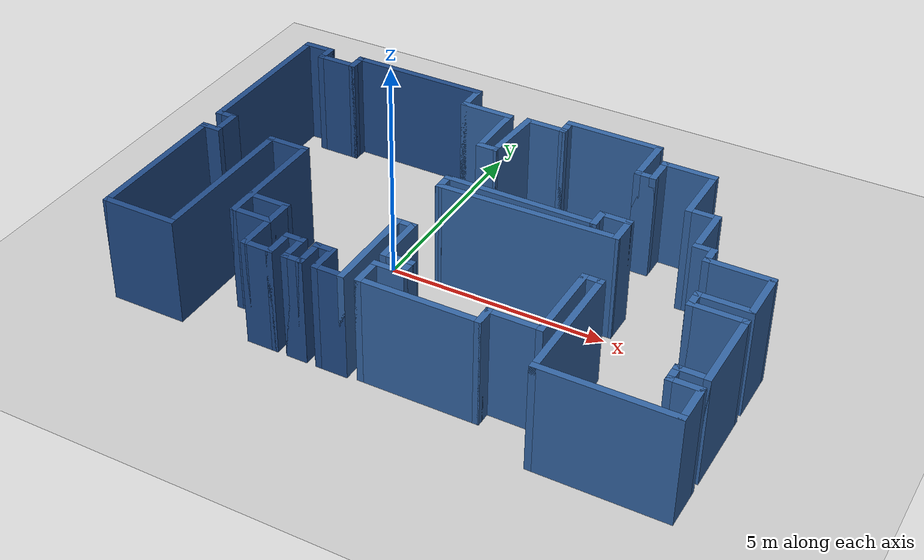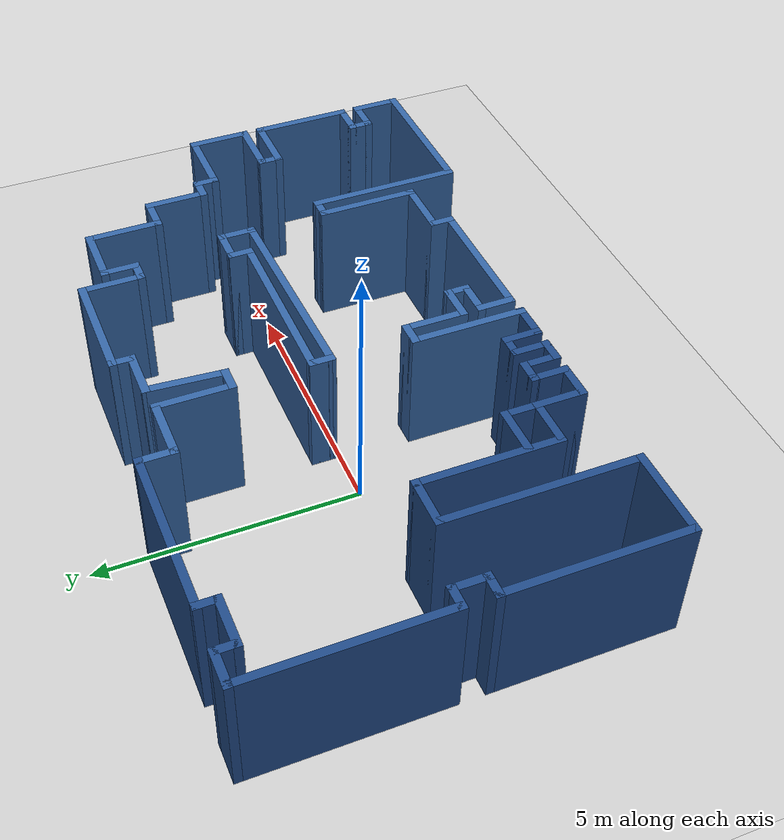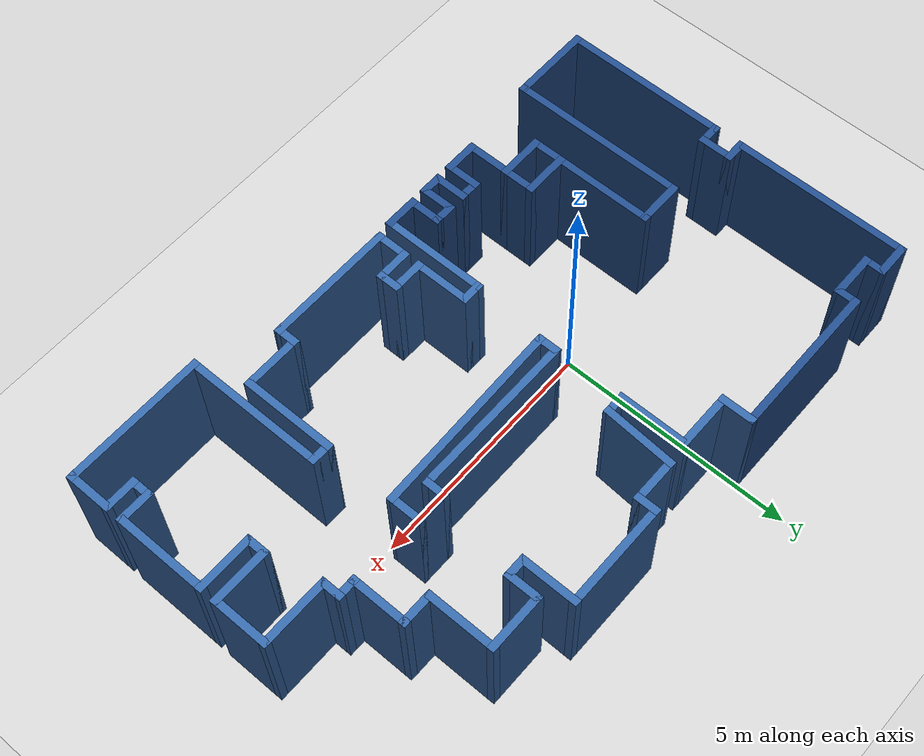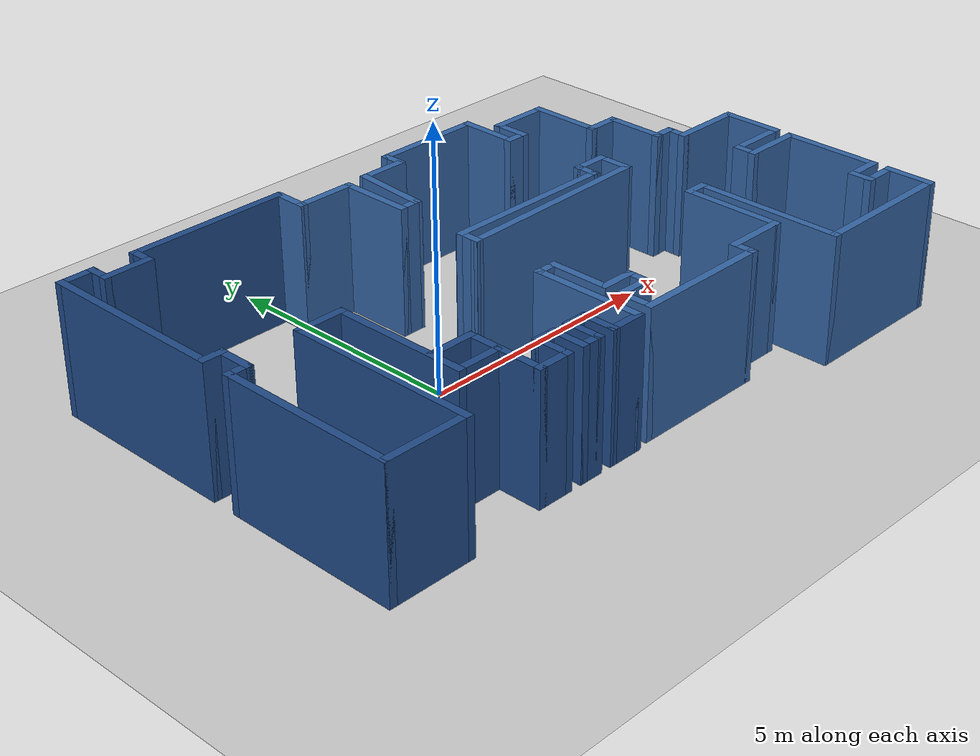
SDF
<sdf version="1.6">
 <world name="default">
  <model name="ground_plane">
   <static>1</static>
   <link name="link">
    <collision name="collision">
     <geometry><plane><normal>0 0 1</normal><size>100 100</size></plane></geometry>
     <surface>
      <contact><collide_bitmask>65535</collide_bitmask></contact>
      <friction><ode><mu>100</mu><mu2>50</mu2></ode></friction>
     </surface>
    </collision>
    <visual name="visual">
     <cast_shadows>0</cast_shadows>
     <geometry><plane><normal>0 0 1</normal><size>100 100</size></plane></geometry>
     <material>
      <script><uri>file://media/materials/scripts/gazebo.material</uri><name>Gazebo/Grey</name></script>
     </material>
    </visual>
   </link>
  </model>
  <model name="map_90">
   <pose>1.80242 -0.109149 0 0 -0 0</pose>
   <link name="Wall_1">
    <collision name="Wall_1_Collision">
     <geometry><box><size>0.5 0.15 2.5</size></box></geometry>
     <pose>0 0 1.25 0 -0 0</pose>
    </collision>
    <visual name="Wall_1_Visual">
     <pose>0 0 1.25 0 -0 0</pose>
     <geometry><box><size>0.5 0.15 2.5</size></box></geometry>
     <material>
      <script><uri>file://media/materials/scripts/gazebo.material</uri><name>Gazebo/Grey</name></script>
      <ambient>0.12549 0.290196 0.529412 1</ambient>
     </material>
     <meta><layer>0</layer></meta>
    </visual>
    <pose>-4.95 3.825 0 0 -0 -1.5708</pose>
   </link>
   <link name="Wall_10">
    <collision name="Wall_10_Collision">
     <geometry><box><size>1.75 0.15 2.5</size></box></geometry>
     <pose>0 0 1.25 0 -0 0</pose>
    </collision>
    <visual name="Wall_10_Visual">
     <pose>0 0 1.25 0 -0 0</pose>
     <geometry><box><size>1.75 0.15 2.5</size></box></geometry>
     <material>
      <script><uri>file://media/materials/scripts/gazebo.material</uri><name>Gazebo/Grey</name></script>
      <ambient>0.12549 0.290196 0.529412 1</ambient>
     </material>
     <meta><layer>0</layer></meta>
    </visual>
    <pose>-5.6 -3.55 0 0 -0 0</pose>
   </link>
   <link name="Wall_11">
    <collision name="Wall_11_Collision">
     <geometry><box><size>3.75 0.15 2.5</size></box></geometry>
     <pose>0 0 1.25 0 -0 0</pose>
    </collision>
    <visual name="Wall_11_Visual">
     <pose>0 0 1.25 0 -0 0</pose>
     <geometry><box><size>3.75 0.15 2.5</size></box></geometry>
     <material>
      <script><uri>file://media/materials/scripts/gazebo.material</uri><name>Gazebo/Grey</name></script>
      <ambient>0.12549 0.290196 0.529412 1</ambient>
     </material>
     <meta><layer>0</layer></meta>
    </visual>
    <pose>-4.8 -1.75 0 0 -0 1.5708</pose>
   </link>
   <link name="Wall_110">
    <collision name="Wall_110_Collision">
     <geometry><box><size>3.25 0.15 2.5</size></box></geometry>
     <pose>0 0 1.25 0 -0 0</pose>
    </collision>
    <visual name="Wall_110_Visual">
     <pose>0 0 1.25 0 -0 0</pose>
     <geometry><box><size>3.25 0.15 2.5</size></box></geometry>
     <material>
      <script><uri>file://media/materials/scripts/gazebo.material</uri><name>Gazebo/Grey</name></script>
      <ambient>0.12549 0.290196 0.529412 1</ambient>
     </material>
     <meta><layer>0</layer></meta>
    </visual>
    <pose>-3.4 4 0 0 -0 0</pose>
   </link>
   <link name="Wall_111">
    <collision name="Wall_111_Collision">
     <geometry><box><size>0.75 0.15 2.5</size></box></geometry>
     <pose>0 0 1.25 0 -0 0</pose>
    </collision>
    <visual name="Wall_111_Visual">
     <pose>0 0 1.25 0 -0 0</pose>
     <geometry><box><size>0.75 0.15 2.5</size></box></geometry>
     <material>
      <script><uri>file://media/materials/scripts/gazebo.material</uri><name>Gazebo/Grey</name></script>
      <ambient>0.203922 0.396078 0.643137 1</ambient>
     </material>
     <meta><layer>0</layer></meta>
    </visual>
    <pose>-1.85 3.7 0 0 -0 -1.5708</pose>
   </link>
   <link name="Wall_112">
    <collision name="Wall_112_Collision">
     <geometry><box><size>1.25 0.15 2.5</size></box></geometry>
     <pose>0 0 1.25 0 -0 0</pose>
    </collision>
    <visual name="Wall_112_Visual">
     <pose>0 0 1.25 0 -0 0</pose>
     <geometry><box><size>1.25 0.15 2.5</size></box></geometry>
     <material>
      <script><uri>file://media/materials/scripts/gazebo.material</uri><name>Gazebo/Grey</name></script>
      <ambient>0.203922 0.396078 0.643137 1</ambient>
     </material>
     <meta><layer>0</layer></meta>
    </visual>
    <pose>-1.3 3.4 0 0 -0 0</pose>
   </link>
   <link name="Wall_113">
    <collision name="Wall_113_Collision">
     <geometry><box><size>1.5 0.15 2.5</size></box></geometry>
     <pose>0 0 1.25 0 -0 0</pose>
    </collision>
    <visual name="Wall_113_Visual">
     <pose>0 0 1.25 0 -0 0</pose>
     <geometry><box><size>1.5 0.15 2.5</size></box></geometry>
     <material>
      <script><uri>file://media/materials/scripts/gazebo.material</uri><name>Gazebo/Grey</name></script>
      <ambient>0.203922 0.396078 0.643137 1</ambient>
     </material>
     <meta><layer>0</layer></meta>
    </visual>
    <pose>-0.75 2.725 0 0 -0 -1.5708</pose>
   </link>
   <link name="Wall_114">
    <collision name="Wall_114_Collision">
     <geometry><box><size>0.5 0.15 2.5</size></box></geometry>
     <pose>0 0 1.25 0 -0 0</pose>
    </collision>
    <visual name="Wall_114_Visual">
     <pose>0 0 1.25 0 -0 0</pose>
     <geometry><box><size>0.5 0.15 2.5</size></box></geometry>
     <material>
      <script><uri>file://media/materials/scripts/gazebo.material</uri><name>Gazebo/Grey</name></script>
      <ambient>0.203922 0.396078 0.643137 1</ambient>
     </material>
     <meta><layer>0</layer></meta>
    </visual>
    <pose>-0.575 2.05 0 0 -0 0</pose>
   </link>
   <link name="Wall_115">
    <collision name="Wall_115_Collision">
     <geometry><box><size>1.55357 0.15 2.5</size></box></geometry>
     <pose>0 0 1.25 0 -0 0</pose>
    </collision>
    <visual name="Wall_115_Visual">
     <pose>0 0 1.25 0 -0 0</pose>
     <geometry><box><size>1.55357 0.15 2.5</size></box></geometry>
     <material>
      <script><uri>file://media/materials/scripts/gazebo.material</uri><name>Gazebo/Grey</name></script>
      <ambient>0.203922 0.396078 0.643137 1</ambient>
     </material>
     <meta><layer>0</layer></meta>
    </visual>
    <pose>-0.35 2.75 0 0 -0 1.49949</pose>
   </link>
   <link name="Wall_117">
    <collision name="Wall_117_Collision">
     <geometry><box><size>0.5 0.15 2.5</size></box></geometry>
     <pose>0 0 1.25 0 -0 0</pose>
    </collision>
    <visual name="Wall_117_Visual">
     <pose>0 0 1.25 0 -0 0</pose>
     <geometry><box><size>0.5 0.15 2.5</size></box></geometry>
     <material>
      <script><uri>file://media/materials/scripts/gazebo.material</uri><name>Gazebo/Grey</name></script>
      <ambient>0.203922 0.396078 0.643137 1</ambient>
     </material>
     <meta><layer>0</layer></meta>
    </visual>
    <pose>2.61621 0.763774 0 0 -0 1.5708</pose>
   </link>
   <link name="Wall_118">
    <collision name="Wall_118_Collision">
     <geometry><box><size>0.75 0.15 2.5</size></box></geometry>
     <pose>0 0 1.25 0 -0 0</pose>
    </collision>
    <visual name="Wall_118_Visual">
     <pose>0 0 1.25 0 -0 0</pose>
     <geometry><box><size>0.75 0.15 2.5</size></box></geometry>
     <material>
      <script><uri>file://media/materials/scripts/gazebo.material</uri><name>Gazebo/Grey</name></script>
      <ambient>0.203922 0.396078 0.643137 1</ambient>
     </material>
     <meta><layer>0</layer></meta>
    </visual>
    <pose>2.91621 0.938774 0 0 -0 0</pose>
   </link>
   <link name="Wall_12">
    <collision name="Wall_12_Collision">
     <geometry><box><size>1 0.15 2.5</size></box></geometry>
     <pose>0 0 1.25 0 -0 0</pose>
    </collision>
    <visual name="Wall_12_Visual">
     <pose>0 0 1.25 0 -0 0</pose>
     <geometry><box><size>1 0.15 2.5</size></box></geometry>
     <material>
      <script><uri>file://media/materials/scripts/gazebo.material</uri><name>Gazebo/Grey</name></script>
      <ambient>0.12549 0.290196 0.529412 1</ambient>
     </material>
     <meta><layer>0</layer></meta>
    </visual>
    <pose>-4.375 0.05 0 0 -0 0</pose>
   </link>
   <link name="Wall_120">
    <collision name="Wall_120_Collision">
     <geometry><box><size>0.75 0.15 2.5</size></box></geometry>
     <pose>0 0 1.25 0 -0 0</pose>
    </collision>
    <visual name="Wall_120_Visual">
     <pose>0 0 1.25 0 -0 0</pose>
     <geometry><box><size>0.75 0.15 2.5</size></box></geometry>
     <material>
      <script><uri>file://media/materials/scripts/gazebo.material</uri><name>Gazebo/Grey</name></script>
      <ambient>0.203922 0.396078 0.643137 1</ambient>
     </material>
     <meta><layer>0</layer></meta>
    </visual>
    <pose>3.21621 0.638774 0 0 -0 -1.5708</pose>
   </link>
   <link name="Wall_121">
    <collision name="Wall_121_Collision">
     <geometry><box><size>4.10127 0.15 2.5</size></box></geometry>
     <pose>0 0 1.25 0 -0 0</pose>
    </collision>
    <visual name="Wall_121_Visual">
     <pose>0 0 1.25 0 -0 0</pose>
     <geometry><box><size>4.10127 0.15 2.5</size></box></geometry>
     <material>
      <script><uri>file://media/materials/scripts/gazebo.material</uri><name>Gazebo/Grey</name></script>
      <ambient>0.203922 0.396078 0.643137 1</ambient>
     </material>
     <meta><layer>0</layer></meta>
    </visual>
    <pose>1.24121 0.288774 0 0 -0 -3.11628</pose>
   </link>
   <link name="Wall_13">
    <collision name="Wall_13_Collision">
     <geometry><box><size>2.75 0.15 2.5</size></box></geometry>
     <pose>0 0 1.25 0 -0 0</pose>
    </collision>
    <visual name="Wall_13_Visual">
     <pose>0 0 1.25 0 -0 0</pose>
     <geometry><box><size>2.75 0.15 2.5</size></box></geometry>
     <material>
      <script><uri>file://media/materials/scripts/gazebo.material</uri><name>Gazebo/Grey</name></script>
      <ambient>0.12549 0.290196 0.529412 1</ambient>
     </material>
     <meta><layer>0</layer></meta>
    </visual>
    <pose>-3.95 -1.25 0 0 -0 -1.5708</pose>
   </link>
   <link name="Wall_14">
    <collision name="Wall_14_Collision">
     <geometry><box><size>1 0.15 2.5</size></box></geometry>
     <pose>0 0 1.25 0 -0 0</pose>
    </collision>
    <visual name="Wall_14_Visual">
     <pose>0 0 1.25 0 -0 0</pose>
     <geometry><box><size>1 0.15 2.5</size></box></geometry>
     <material>
      <script><uri>file://media/materials/scripts/gazebo.material</uri><name>Gazebo/Grey</name></script>
      <ambient>0.12549 0.290196 0.529412 1</ambient>
     </material>
     <meta><layer>0</layer></meta>
    </visual>
    <pose>-3.525 -2.55 0 0 -0 0</pose>
   </link>
   <link name="Wall_15">
    <collision name="Wall_15_Collision">
     <geometry><box><size>1 0.15 2.5</size></box></geometry>
     <pose>0 0 1.25 0 -0 0</pose>
    </collision>
    <visual name="Wall_15_Visual">
     <pose>0 0 1.25 0 -0 0</pose>
     <geometry><box><size>1 0.15 2.5</size></box></geometry>
     <material>
      <script><uri>file://media/materials/scripts/gazebo.material</uri><name>Gazebo/Grey</name></script>
      <ambient>0.12549 0.290196 0.529412 1</ambient>
     </material>
     <meta><layer>0</layer></meta>
    </visual>
    <pose>-3.1 -2.975 0 0 -0 -1.5708</pose>
   </link>
   <link name="Wall_16">
    <collision name="Wall_16_Collision">
     <geometry><box><size>0.75 0.15 2.5</size></box></geometry>
     <pose>0 0 1.25 0 -0 0</pose>
    </collision>
    <visual name="Wall_16_Visual">
     <pose>0 0 1.25 0 -0 0</pose>
     <geometry><box><size>0.75 0.15 2.5</size></box></geometry>
     <material>
      <script><uri>file://media/materials/scripts/gazebo.material</uri><name>Gazebo/Grey</name></script>
      <ambient>0.12549 0.290196 0.529412 1</ambient>
     </material>
     <meta><layer>0</layer></meta>
    </visual>
    <pose>-2.8 -3.4 0 0 -0 0</pose>
   </link>
   <link name="Wall_19">
    <collision name="Wall_19_Collision">
     <geometry><box><size>0.75 0.15 2.5</size></box></geometry>
     <pose>0 0 1.25 0 -0 0</pose>
    </collision>
    <visual name="Wall_19_Visual">
     <pose>0 0 1.25 0 -0 0</pose>
     <geometry><box><size>0.75 0.15 2.5</size></box></geometry>
     <material>
      <script><uri>file://media/materials/scripts/gazebo.material</uri><name>Gazebo/Grey</name></script>
      <ambient>0.12549 0.290196 0.529412 1</ambient>
     </material>
     <meta><layer>0</layer></meta>
    </visual>
    <pose>-2.5 -3.1 0 0 -0 1.5708</pose>
   </link>
   <link name="Wall_2">
    <collision name="Wall_2_Collision">
     <geometry><box><size>1 0.15 2.5</size></box></geometry>
     <pose>0 0 1.25 0 -0 0</pose>
    </collision>
    <visual name="Wall_2_Visual">
     <pose>0 0 1.25 0 -0 0</pose>
     <geometry><box><size>1 0.15 2.5</size></box></geometry>
     <material>
      <script><uri>file://media/materials/scripts/gazebo.material</uri><name>Gazebo/Grey</name></script>
      <ambient>0.12549 0.290196 0.529412 1</ambient>
     </material>
     <meta><layer>0</layer></meta>
    </visual>
    <pose>-5.375 3.65 0 0 -0 3.14159</pose>
   </link>
   <link name="Wall_20">
    <collision name="Wall_20_Collision">
     <geometry><box><size>0.5 0.15 2.5</size></box></geometry>
     <pose>0 0 1.25 0 -0 0</pose>
    </collision>
    <visual name="Wall_20_Visual">
     <pose>0 0 1.25 0 -0 0</pose>
     <geometry><box><size>0.5 0.15 2.5</size></box></geometry>
     <material>
      <script><uri>file://media/materials/scripts/gazebo.material</uri><name>Gazebo/Grey</name></script>
      <ambient>0.12549 0.290196 0.529412 1</ambient>
     </material>
     <meta><layer>0</layer></meta>
    </visual>
    <pose>-2.325 -2.8 0 0 -0 0</pose>
   </link>
   <link name="Wall_21">
    <collision name="Wall_21_Collision">
     <geometry><box><size>0.75 0.15 2.5</size></box></geometry>
     <pose>0 0 1.25 0 -0 0</pose>
    </collision>
    <visual name="Wall_21_Visual">
     <pose>0 0 1.25 0 -0 0</pose>
     <geometry><box><size>0.75 0.15 2.5</size></box></geometry>
     <material>
      <script><uri>file://media/materials/scripts/gazebo.material</uri><name>Gazebo/Grey</name></script>
      <ambient>0.12549 0.290196 0.529412 1</ambient>
     </material>
     <meta><layer>0</layer></meta>
    </visual>
    <pose>-2.15 -3.1 0 0 -0 -1.5708</pose>
   </link>
   <link name="Wall_22">
    <collision name="Wall_22_Collision">
     <geometry><box><size>0.5 0.15 2.5</size></box></geometry>
     <pose>0 0 1.25 0 -0 0</pose>
    </collision>
    <visual name="Wall_22_Visual">
     <pose>0 0 1.25 0 -0 0</pose>
     <geometry><box><size>0.5 0.15 2.5</size></box></geometry>
     <material>
      <script><uri>file://media/materials/scripts/gazebo.material</uri><name>Gazebo/Grey</name></script>
      <ambient>0.12549 0.290196 0.529412 1</ambient>
     </material>
     <meta><layer>0</layer></meta>
    </visual>
    <pose>-1.975 -3.4 0 0 -0 0</pose>
   </link>
   <link name="Wall_23">
    <collision name="Wall_23_Collision">
     <geometry><box><size>0.75 0.15 2.5</size></box></geometry>
     <pose>0 0 1.25 0 -0 0</pose>
    </collision>
    <visual name="Wall_23_Visual">
     <pose>0 0 1.25 0 -0 0</pose>
     <geometry><box><size>0.75 0.15 2.5</size></box></geometry>
     <material>
      <script><uri>file://media/materials/scripts/gazebo.material</uri><name>Gazebo/Grey</name></script>
      <ambient>0.12549 0.290196 0.529412 1</ambient>
     </material>
     <meta><layer>0</layer></meta>
    </visual>
    <pose>-1.8 -3.1 0 0 -0 1.5708</pose>
   </link>
   <link name="Wall_24">
    <collision name="Wall_24_Collision">
     <geometry><box><size>0.5 0.15 2.5</size></box></geometry>
     <pose>0 0 1.25 0 -0 0</pose>
    </collision>
    <visual name="Wall_24_Visual">
     <pose>0 0 1.25 0 -0 0</pose>
     <geometry><box><size>0.5 0.15 2.5</size></box></geometry>
     <material>
      <script><uri>file://media/materials/scripts/gazebo.material</uri><name>Gazebo/Grey</name></script>
      <ambient>0.12549 0.290196 0.529412 1</ambient>
     </material>
     <meta><layer>0</layer></meta>
    </visual>
    <pose>-1.625 -2.8 0 0 -0 0</pose>
   </link>
   <link name="Wall_25">
    <collision name="Wall_25_Collision">
     <geometry><box><size>0.75 0.15 2.5</size></box></geometry>
     <pose>0 0 1.25 0 -0 0</pose>
    </collision>
    <visual name="Wall_25_Visual">
     <pose>0 0 1.25 0 -0 0</pose>
     <geometry><box><size>0.75 0.15 2.5</size></box></geometry>
     <material>
      <script><uri>file://media/materials/scripts/gazebo.material</uri><name>Gazebo/Grey</name></script>
      <ambient>0.12549 0.290196 0.529412 1</ambient>
     </material>
     <meta><layer>0</layer></meta>
    </visual>
    <pose>-1.45 -3.1 0 0 -0 -1.5708</pose>
   </link>
   <link name="Wall_26">
    <collision name="Wall_26_Collision">
     <geometry><box><size>0.75 0.15 2.5</size></box></geometry>
     <pose>0 0 1.25 0 -0 0</pose>
    </collision>
    <visual name="Wall_26_Visual">
     <pose>0 0 1.25 0 -0 0</pose>
     <geometry><box><size>0.75 0.15 2.5</size></box></geometry>
     <material>
      <script><uri>file://media/materials/scripts/gazebo.material</uri><name>Gazebo/Grey</name></script>
      <ambient>0.12549 0.290196 0.529412 1</ambient>
     </material>
     <meta><layer>0</layer></meta>
    </visual>
    <pose>-1.15 -3.4 0 0 -0 0</pose>
   </link>
   <link name="Wall_27">
    <collision name="Wall_27_Collision">
     <geometry><box><size>2.25 0.15 2.5</size></box></geometry>
     <pose>0 0 1.25 0 -0 0</pose>
    </collision>
    <visual name="Wall_27_Visual">
     <pose>0 0 1.25 0 -0 0</pose>
     <geometry><box><size>2.25 0.15 2.5</size></box></geometry>
     <material>
      <script><uri>file://media/materials/scripts/gazebo.material</uri><name>Gazebo/Grey</name></script>
      <ambient>0.203922 0.396078 0.643137 1</ambient>
     </material>
     <meta><layer>0</layer></meta>
    </visual>
    <pose>-0.85 -2.35 0 0 -0 1.5708</pose>
   </link>
   <link name="Wall_28">
    <collision name="Wall_28_Collision">
     <geometry><box><size>0.5 0.15 2.5</size></box></geometry>
     <pose>0 0 1.25 0 -0 0</pose>
    </collision>
    <visual name="Wall_28_Visual">
     <pose>0 0 1.25 0 -0 0</pose>
     <geometry><box><size>0.5 0.15 2.5</size></box></geometry>
     <material>
      <script><uri>file://media/materials/scripts/gazebo.material</uri><name>Gazebo/Grey</name></script>
      <ambient>0.203922 0.396078 0.643137 1</ambient>
     </material>
     <meta><layer>0</layer></meta>
    </visual>
    <pose>-0.675 -1.3 0 0 -0 0</pose>
   </link>
   <link name="Wall_29">
    <collision name="Wall_29_Collision">
     <geometry><box><size>1.25 0.15 2.5</size></box></geometry>
     <pose>0 0 1.25 0 -0 0</pose>
    </collision>
    <visual name="Wall_29_Visual">
     <pose>0 0 1.25 0 -0 0</pose>
     <geometry><box><size>1.25 0.15 2.5</size></box></geometry>
     <material>
      <script><uri>file://media/materials/scripts/gazebo.material</uri><name>Gazebo/Grey</name></script>
      <ambient>0.203922 0.396078 0.643137 1</ambient>
     </material>
     <meta><layer>0</layer></meta>
    </visual>
    <pose>-0.5 -1.85 0 0 -0 -1.5708</pose>
   </link>
   <link name="Wall_3">
    <collision name="Wall_3_Collision">
     <geometry><box><size>0.5 0.15 2.5</size></box></geometry>
     <pose>0 0 1.25 0 -0 0</pose>
    </collision>
    <visual name="Wall_3_Visual">
     <pose>0 0 1.25 0 -0 0</pose>
     <geometry><box><size>0.5 0.15 2.5</size></box></geometry>
     <material>
      <script><uri>file://media/materials/scripts/gazebo.material</uri><name>Gazebo/Grey</name></script>
      <ambient>0.12549 0.290196 0.529412 1</ambient>
     </material>
     <meta><layer>0</layer></meta>
    </visual>
    <pose>-5.8 3.825 0 0 -0 1.5708</pose>
   </link>
   <link name="Wall_30">
    <collision name="Wall_30_Collision">
     <geometry><box><size>0.75 0.15 2.5</size></box></geometry>
     <pose>0 0 1.25 0 -0 0</pose>
    </collision>
    <visual name="Wall_30_Visual">
     <pose>0 0 1.25 0 -0 0</pose>
     <geometry><box><size>0.75 0.15 2.5</size></box></geometry>
     <material>
      <script><uri>file://media/materials/scripts/gazebo.material</uri><name>Gazebo/Grey</name></script>
      <ambient>0.203922 0.396078 0.643137 1</ambient>
     </material>
     <meta><layer>0</layer></meta>
    </visual>
    <pose>-0.2 -2.4 0 0 -0 0</pose>
   </link>
   <link name="Wall_31">
    <collision name="Wall_31_Collision">
     <geometry><box><size>0.5 0.15 2.5</size></box></geometry>
     <pose>0 0 1.25 0 -0 0</pose>
    </collision>
    <visual name="Wall_31_Visual">
     <pose>0 0 1.25 0 -0 0</pose>
     <geometry><box><size>0.5 0.15 2.5</size></box></geometry>
     <material>
      <script><uri>file://media/materials/scripts/gazebo.material</uri><name>Gazebo/Grey</name></script>
      <ambient>0.203922 0.396078 0.643137 1</ambient>
     </material>
     <meta><layer>0</layer></meta>
    </visual>
    <pose>0.1 -2.575 0 0 -0 -1.5708</pose>
   </link>
   <link name="Wall_32">
    <collision name="Wall_32_Collision">
     <geometry><box><size>0.75 0.15 2.5</size></box></geometry>
     <pose>0 0 1.25 0 -0 0</pose>
    </collision>
    <visual name="Wall_32_Visual">
     <pose>0 0 1.25 0 -0 0</pose>
     <geometry><box><size>0.75 0.15 2.5</size></box></geometry>
     <material>
      <script><uri>file://media/materials/scripts/gazebo.material</uri><name>Gazebo/Grey</name></script>
      <ambient>0.203922 0.396078 0.643137 1</ambient>
     </material>
     <meta><layer>0</layer></meta>
    </visual>
    <pose>-0.2 -2.75 0 0 -0 3.14159</pose>
   </link>
   <link name="Wall_33">
    <collision name="Wall_33_Collision">
     <geometry><box><size>0.75 0.15 2.5</size></box></geometry>
     <pose>0 0 1.25 0 -0 0</pose>
    </collision>
    <visual name="Wall_33_Visual">
     <pose>0 0 1.25 0 -0 0</pose>
     <geometry><box><size>0.75 0.15 2.5</size></box></geometry>
     <material>
      <script><uri>file://media/materials/scripts/gazebo.material</uri><name>Gazebo/Grey</name></script>
      <ambient>0.203922 0.396078 0.643137 1</ambient>
     </material>
     <meta><layer>0</layer></meta>
    </visual>
    <pose>-0.5 -3.05 0 0 -0 -1.5708</pose>
   </link>
   <link name="Wall_34">
    <collision name="Wall_34_Collision">
     <geometry><box><size>2.75 0.15 2.5</size></box></geometry>
     <pose>0 0 1.25 0 -0 0</pose>
    </collision>
    <visual name="Wall_34_Visual">
     <pose>0 0 1.25 0 -0 0</pose>
     <geometry><box><size>2.75 0.15 2.5</size></box></geometry>
     <material>
      <script><uri>file://media/materials/scripts/gazebo.material</uri><name>Gazebo/Grey</name></script>
      <ambient>0.203922 0.396078 0.643137 1</ambient>
     </material>
     <meta><layer>0</layer></meta>
    </visual>
    <pose>0.8 -3.35 0 0 -0 0</pose>
   </link>
   <link name="Wall_35">
    <collision name="Wall_35_Collision">
     <geometry><box><size>0.5 0.15 2.5</size></box></geometry>
     <pose>0 0 1.25 0 -0 0</pose>
    </collision>
    <visual name="Wall_35_Visual">
     <pose>0 0 1.25 0 -0 0</pose>
     <geometry><box><size>0.5 0.15 2.5</size></box></geometry>
     <material>
      <script><uri>file://media/materials/scripts/gazebo.material</uri><name>Gazebo/Grey</name></script>
      <ambient>0.203922 0.396078 0.643137 1</ambient>
     </material>
     <meta><layer>0</layer></meta>
    </visual>
    <pose>2.1 -3.175 0 0 -0 1.5708</pose>
   </link>
   <link name="Wall_36">
    <collision name="Wall_36_Collision">
     <geometry><box><size>1.25 0.15 2.5</size></box></geometry>
     <pose>0 0 1.25 0 -0 0</pose>
    </collision>
    <visual name="Wall_36_Visual">
     <pose>0 0 1.25 0 -0 0</pose>
     <geometry><box><size>1.25 0.15 2.5</size></box></geometry>
     <material>
      <script><uri>file://media/materials/scripts/gazebo.material</uri><name>Gazebo/Grey</name></script>
      <ambient>0.203922 0.396078 0.643137 1</ambient>
     </material>
     <meta><layer>0</layer></meta>
    </visual>
    <pose>2.65 -3 0 0 -0 0</pose>
   </link>
   <link name="Wall_37">
    <collision name="Wall_37_Collision">
     <geometry><box><size>2 0.15 2.5</size></box></geometry>
     <pose>0 0 1.25 0 -0 0</pose>
    </collision>
    <visual name="Wall_37_Visual">
     <pose>0 0 1.25 0 -0 0</pose>
     <geometry><box><size>2 0.15 2.5</size></box></geometry>
     <material>
      <script><uri>file://media/materials/scripts/gazebo.material</uri><name>Gazebo/Grey</name></script>
      <ambient>0.203922 0.396078 0.643137 1</ambient>
     </material>
     <meta><layer>0</layer></meta>
    </visual>
    <pose>3.2 -2.075 0 0 -0 1.5708</pose>
   </link>
   <link name="Wall_38">
    <collision name="Wall_38_Collision">
     <geometry><box><size>0.5 0.15 2.5</size></box></geometry>
     <pose>0 0 1.25 0 -0 0</pose>
    </collision>
    <visual name="Wall_38_Visual">
     <pose>0 0 1.25 0 -0 0</pose>
     <geometry><box><size>0.5 0.15 2.5</size></box></geometry>
     <material>
      <script><uri>file://media/materials/scripts/gazebo.material</uri><name>Gazebo/Grey</name></script>
      <ambient>0.203922 0.396078 0.643137 1</ambient>
     </material>
     <meta><layer>0</layer></meta>
    </visual>
    <pose>3.375 -1.15 0 0 -0 0</pose>
   </link>
   <link name="Wall_39">
    <collision name="Wall_39_Collision">
     <geometry><box><size>3 0.15 2.5</size></box></geometry>
     <pose>0 0 1.25 0 -0 0</pose>
    </collision>
    <visual name="Wall_39_Visual">
     <pose>0 0 1.25 0 -0 0</pose>
     <geometry><box><size>3 0.15 2.5</size></box></geometry>
     <material>
      <script><uri>file://media/materials/scripts/gazebo.material</uri><name>Gazebo/Grey</name></script>
      <ambient>0.203922 0.396078 0.643137 1</ambient>
     </material>
     <meta><layer>0</layer></meta>
    </visual>
    <pose>3.55 -2.575 0 0 -0 -1.5708</pose>
   </link>
   <link name="Wall_4">
    <collision name="Wall_4_Collision">
     <geometry><box><size>0.75 0.15 2.5</size></box></geometry>
     <pose>0 0 1.25 0 -0 0</pose>
    </collision>
    <visual name="Wall_4_Visual">
     <pose>0 0 1.25 0 -0 0</pose>
     <geometry><box><size>0.75 0.15 2.5</size></box></geometry>
     <material>
      <script><uri>file://media/materials/scripts/gazebo.material</uri><name>Gazebo/Grey</name></script>
      <ambient>0.12549 0.290196 0.529412 1</ambient>
     </material>
     <meta><layer>0</layer></meta>
    </visual>
    <pose>-6.1 4 0 0 -0 3.14159</pose>
   </link>
   <link name="Wall_40">
    <collision name="Wall_40_Collision">
     <geometry><box><size>3 0.15 2.5</size></box></geometry>
     <pose>0 0 1.25 0 -0 0</pose>
    </collision>
    <visual name="Wall_40_Visual">
     <pose>0 0 1.25 0 -0 0</pose>
     <geometry><box><size>3 0.15 2.5</size></box></geometry>
     <material>
      <script><uri>file://media/materials/scripts/gazebo.material</uri><name>Gazebo/Grey</name></script>
      <ambient>0.203922 0.396078 0.643137 1</ambient>
     </material>
     <meta><layer>0</layer></meta>
    </visual>
    <pose>4.975 -4 0 0 -0 0</pose>
   </link>
   <link name="Wall_41">
    <collision name="Wall_41_Collision">
     <geometry><box><size>1 0.15 2.5</size></box></geometry>
     <pose>0 0 1.25 0 -0 0</pose>
    </collision>
    <visual name="Wall_41_Visual">
     <pose>0 0 1.25 0 -0 0</pose>
     <geometry><box><size>1 0.15 2.5</size></box></geometry>
     <material>
      <script><uri>file://media/materials/scripts/gazebo.material</uri><name>Gazebo/Grey</name></script>
      <ambient>0.203922 0.396078 0.643137 1</ambient>
     </material>
     <meta><layer>0</layer></meta>
    </visual>
    <pose>6.4 -3.575 0 0 -0 1.5708</pose>
   </link>
   <link name="Wall_42">
    <collision name="Wall_42_Collision">
     <geometry><box><size>0.75 0.15 2.5</size></box></geometry>
     <pose>0 0 1.25 0 -0 0</pose>
    </collision>
    <visual name="Wall_42_Visual">
     <pose>0 0 1.25 0 -0 0</pose>
     <geometry><box><size>0.75 0.15 2.5</size></box></geometry>
     <material>
      <script><uri>file://media/materials/scripts/gazebo.material</uri><name>Gazebo/Grey</name></script>
      <ambient>0.203922 0.396078 0.643137 1</ambient>
     </material>
     <meta><layer>0</layer></meta>
    </visual>
    <pose>6.1 -3.15 0 0 -0 3.14159</pose>
   </link>
   <link name="Wall_43">
    <collision name="Wall_43_Collision">
     <geometry><box><size>0.5 0.15 2.5</size></box></geometry>
     <pose>0 0 1.25 0 -0 0</pose>
    </collision>
    <visual name="Wall_43_Visual">
     <pose>0 0 1.25 0 -0 0</pose>
     <geometry><box><size>0.5 0.15 2.5</size></box></geometry>
     <material>
      <script><uri>file://media/materials/scripts/gazebo.material</uri><name>Gazebo/Grey</name></script>
      <ambient>0.203922 0.396078 0.643137 1</ambient>
     </material>
     <meta><layer>0</layer></meta>
    </visual>
    <pose>5.8 -2.975 0 0 -0 1.5708</pose>
   </link>
   <link name="Wall_44">
    <collision name="Wall_44_Collision">
     <geometry><box><size>0.75 0.15 2.5</size></box></geometry>
     <pose>0 0 1.25 0 -0 0</pose>
    </collision>
    <visual name="Wall_44_Visual">
     <pose>0 0 1.25 0 -0 0</pose>
     <geometry><box><size>0.75 0.15 2.5</size></box></geometry>
     <material>
      <script><uri>file://media/materials/scripts/gazebo.material</uri><name>Gazebo/Grey</name></script>
      <ambient>0.203922 0.396078 0.643137 1</ambient>
     </material>
     <meta><layer>0</layer></meta>
    </visual>
    <pose>6.1 -2.8 0 0 -0 0</pose>
   </link>
   <link name="Wall_45">
    <collision name="Wall_45_Collision">
     <geometry><box><size>2 0.15 2.5</size></box></geometry>
     <pose>0 0 1.25 0 -0 0</pose>
    </collision>
    <visual name="Wall_45_Visual">
     <pose>0 0 1.25 0 -0 0</pose>
     <geometry><box><size>2 0.15 2.5</size></box></geometry>
     <material>
      <script><uri>file://media/materials/scripts/gazebo.material</uri><name>Gazebo/Grey</name></script>
      <ambient>0.203922 0.396078 0.643137 1</ambient>
     </material>
     <meta><layer>0</layer></meta>
    </visual>
    <pose>6.4 -1.875 0 0 -0 1.5708</pose>
   </link>
   <link name="Wall_46">
    <collision name="Wall_46_Collision">
     <geometry><box><size>1.25 0.15 2.5</size></box></geometry>
     <pose>0 0 1.25 0 -0 0</pose>
    </collision>
    <visual name="Wall_46_Visual">
     <pose>0 0 1.25 0 -0 0</pose>
     <geometry><box><size>1.25 0.15 2.5</size></box></geometry>
     <material>
      <script><uri>file://media/materials/scripts/gazebo.material</uri><name>Gazebo/Grey</name></script>
      <ambient>0.203922 0.396078 0.643137 1</ambient>
     </material>
     <meta><layer>0</layer></meta>
    </visual>
    <pose>5.85 -0.95 0 0 -0 3.14159</pose>
   </link>
   <link name="Wall_47">
    <collision name="Wall_47_Collision">
     <geometry><box><size>0.5 0.15 2.5</size></box></geometry>
     <pose>0 0 1.25 0 -0 0</pose>
    </collision>
    <visual name="Wall_47_Visual">
     <pose>0 0 1.25 0 -0 0</pose>
     <geometry><box><size>0.5 0.15 2.5</size></box></geometry>
     <material>
      <script><uri>file://media/materials/scripts/gazebo.material</uri><name>Gazebo/Grey</name></script>
      <ambient>0.203922 0.396078 0.643137 1</ambient>
     </material>
     <meta><layer>0</layer></meta>
    </visual>
    <pose>5.3 -0.775 0 0 -0 1.5708</pose>
   </link>
   <link name="Wall_48">
    <collision name="Wall_48_Collision">
     <geometry><box><size>1.25 0.15 2.5</size></box></geometry>
     <pose>0 0 1.25 0 -0 0</pose>
    </collision>
    <visual name="Wall_48_Visual">
     <pose>0 0 1.25 0 -0 0</pose>
     <geometry><box><size>1.25 0.15 2.5</size></box></geometry>
     <material>
      <script><uri>file://media/materials/scripts/gazebo.material</uri><name>Gazebo/Grey</name></script>
      <ambient>0.203922 0.396078 0.643137 1</ambient>
     </material>
     <meta><layer>0</layer></meta>
    </visual>
    <pose>5.85 -0.6 0 0 -0 0</pose>
   </link>
   <link name="Wall_49">
    <collision name="Wall_49_Collision">
     <geometry><box><size>1.25 0.15 2.5</size></box></geometry>
     <pose>0 0 1.25 0 -0 0</pose>
    </collision>
    <visual name="Wall_49_Visual">
     <pose>0 0 1.25 0 -0 0</pose>
     <geometry><box><size>1.25 0.15 2.5</size></box></geometry>
     <material>
      <script><uri>file://media/materials/scripts/gazebo.material</uri><name>Gazebo/Grey</name></script>
      <ambient>0.203922 0.396078 0.643137 1</ambient>
     </material>
     <meta><layer>0</layer></meta>
    </visual>
    <pose>6.4 -0.05 0 0 -0 1.5708</pose>
   </link>
   <link name="Wall_5">
    <collision name="Wall_5_Collision">
     <geometry><box><size>3.75 0.15 2.5</size></box></geometry>
     <pose>0 0 1.25 0 -0 0</pose>
    </collision>
    <visual name="Wall_5_Visual">
     <pose>0 0 1.25 0 -0 0</pose>
     <geometry><box><size>3.75 0.15 2.5</size></box></geometry>
     <material>
      <script><uri>file://media/materials/scripts/gazebo.material</uri><name>Gazebo/Grey</name></script>
      <ambient>0.12549 0.290196 0.529412 1</ambient>
     </material>
     <meta><layer>0</layer></meta>
    </visual>
    <pose>-6.4 2.2 0 0 -0 -1.5708</pose>
   </link>
   <link name="Wall_50">
    <collision name="Wall_50_Collision">
     <geometry><box><size>1.5 0.15 2.5</size></box></geometry>
     <pose>0 0 1.25 0 -0 0</pose>
    </collision>
    <visual name="Wall_50_Visual">
     <pose>0 0 1.25 0 -0 0</pose>
     <geometry><box><size>1.5 0.15 2.5</size></box></geometry>
     <material>
      <script><uri>file://media/materials/scripts/gazebo.material</uri><name>Gazebo/Grey</name></script>
      <ambient>0.203922 0.396078 0.643137 1</ambient>
     </material>
     <meta><layer>0</layer></meta>
    </visual>
    <pose>5.725 0.5 0 0 -0 3.14159</pose>
   </link>
   <link name="Wall_53">
    <collision name="Wall_53_Collision">
     <geometry><box><size>0.5 0.15 2.5</size></box></geometry>
     <pose>0 0 1.25 0 -0 0</pose>
    </collision>
    <visual name="Wall_53_Visual">
     <pose>0 0 1.25 0 -0 0</pose>
     <geometry><box><size>0.5 0.15 2.5</size></box></geometry>
     <material>
      <script><uri>file://media/materials/scripts/gazebo.material</uri><name>Gazebo/Grey</name></script>
      <ambient>0.203922 0.396078 0.643137 1</ambient>
     </material>
     <meta><layer>0</layer></meta>
    </visual>
    <pose>5.05 0.675 0 0 -0 1.5708</pose>
   </link>
   <link name="Wall_54">
    <collision name="Wall_54_Collision">
     <geometry><box><size>0.5 0.15 2.5</size></box></geometry>
     <pose>0 0 1.25 0 -0 0</pose>
    </collision>
    <visual name="Wall_54_Visual">
     <pose>0 0 1.25 0 -0 0</pose>
     <geometry><box><size>0.5 0.15 2.5</size></box></geometry>
     <material>
      <script><uri>file://media/materials/scripts/gazebo.material</uri><name>Gazebo/Grey</name></script>
      <ambient>0.203922 0.396078 0.643137 1</ambient>
     </material>
     <meta><layer>0</layer></meta>
    </visual>
    <pose>4.875 0.85 0 0 -0 3.14159</pose>
   </link>
   <link name="Wall_55">
    <collision name="Wall_55_Collision">
     <geometry><box><size>1.25 0.15 2.5</size></box></geometry>
     <pose>0 0 1.25 0 -0 0</pose>
    </collision>
    <visual name="Wall_55_Visual">
     <pose>0 0 1.25 0 -0 0</pose>
     <geometry><box><size>1.25 0.15 2.5</size></box></geometry>
     <material>
      <script><uri>file://media/materials/scripts/gazebo.material</uri><name>Gazebo/Grey</name></script>
      <ambient>0.203922 0.396078 0.643137 1</ambient>
     </material>
     <meta><layer>0</layer></meta>
    </visual>
    <pose>4.7 1.4 0 0 -0 1.5708</pose>
   </link>
   <link name="Wall_56">
    <collision name="Wall_56_Collision">
     <geometry><box><size>0.75 0.15 2.5</size></box></geometry>
     <pose>0 0 1.25 0 -0 0</pose>
    </collision>
    <visual name="Wall_56_Visual">
     <pose>0 0 1.25 0 -0 0</pose>
     <geometry><box><size>0.75 0.15 2.5</size></box></geometry>
     <material>
      <script><uri>file://media/materials/scripts/gazebo.material</uri><name>Gazebo/Grey</name></script>
      <ambient>0.203922 0.396078 0.643137 1</ambient>
     </material>
     <meta><layer>0</layer></meta>
    </visual>
    <pose>4.4 1.95 0 0 -0 3.14159</pose>
   </link>
   <link name="Wall_57">
    <collision name="Wall_57_Collision">
     <geometry><box><size>1.5 0.15 2.5</size></box></geometry>
     <pose>0 0 1.25 0 -0 0</pose>
    </collision>
    <visual name="Wall_57_Visual">
     <pose>0 0 1.25 0 -0 0</pose>
     <geometry><box><size>1.5 0.15 2.5</size></box></geometry>
     <material>
      <script><uri>file://media/materials/scripts/gazebo.material</uri><name>Gazebo/Grey</name></script>
      <ambient>0.203922 0.396078 0.643137 1</ambient>
     </material>
     <meta><layer>0</layer></meta>
    </visual>
    <pose>4.1 2.625 0 0 -0 1.5708</pose>
   </link>
   <link name="Wall_58">
    <collision name="Wall_58_Collision">
     <geometry><box><size>1.25 0.15 2.5</size></box></geometry>
     <pose>0 0 1.25 0 -0 0</pose>
    </collision>
    <visual name="Wall_58_Visual">
     <pose>0 0 1.25 0 -0 0</pose>
     <geometry><box><size>1.25 0.15 2.5</size></box></geometry>
     <material>
      <script><uri>file://media/materials/scripts/gazebo.material</uri><name>Gazebo/Grey</name></script>
      <ambient>0.203922 0.396078 0.643137 1</ambient>
     </material>
     <meta><layer>0</layer></meta>
    </visual>
    <pose>3.55 3.3 0 0 -0 3.14159</pose>
   </link>
   <link name="Wall_59">
    <collision name="Wall_59_Collision">
     <geometry><box><size>0.75 0.15 2.5</size></box></geometry>
     <pose>0 0 1.25 0 -0 0</pose>
    </collision>
    <visual name="Wall_59_Visual">
     <pose>0 0 1.25 0 -0 0</pose>
     <geometry><box><size>0.75 0.15 2.5</size></box></geometry>
     <material>
      <script><uri>file://media/materials/scripts/gazebo.material</uri><name>Gazebo/Grey</name></script>
      <ambient>0.203922 0.396078 0.643137 1</ambient>
     </material>
     <meta><layer>0</layer></meta>
    </visual>
    <pose>3 3 0 0 -0 -1.5708</pose>
   </link>
   <link name="Wall_6">
    <collision name="Wall_6_Collision">
     <geometry><box><size>0.5 0.15 2.5</size></box></geometry>
     <pose>0 0 1.25 0 -0 0</pose>
    </collision>
    <visual name="Wall_6_Visual">
     <pose>0 0 1.25 0 -0 0</pose>
     <geometry><box><size>0.5 0.15 2.5</size></box></geometry>
     <material>
      <script><uri>file://media/materials/scripts/gazebo.material</uri><name>Gazebo/Grey</name></script>
      <ambient>0.12549 0.290196 0.529412 1</ambient>
     </material>
     <meta><layer>0</layer></meta>
    </visual>
    <pose>-6.225 0.4 0 0 -0 0</pose>
   </link>
   <link name="Wall_60">
    <collision name="Wall_60_Collision">
     <geometry><box><size>0.5 0.15 2.5</size></box></geometry>
     <pose>0 0 1.25 0 -0 0</pose>
    </collision>
    <visual name="Wall_60_Visual">
     <pose>0 0 1.25 0 -0 0</pose>
     <geometry><box><size>0.5 0.15 2.5</size></box></geometry>
     <material>
      <script><uri>file://media/materials/scripts/gazebo.material</uri><name>Gazebo/Grey</name></script>
      <ambient>0.203922 0.396078 0.643137 1</ambient>
     </material>
     <meta><layer>0</layer></meta>
    </visual>
    <pose>2.825 2.7 0 0 -0 3.14159</pose>
   </link>
   <link name="Wall_61">
    <collision name="Wall_61_Collision">
     <geometry><box><size>1.25 0.15 2.5</size></box></geometry>
     <pose>0 0 1.25 0 -0 0</pose>
    </collision>
    <visual name="Wall_61_Visual">
     <pose>0 0 1.25 0 -0 0</pose>
     <geometry><box><size>1.25 0.15 2.5</size></box></geometry>
     <material>
      <script><uri>file://media/materials/scripts/gazebo.material</uri><name>Gazebo/Grey</name></script>
      <ambient>0.203922 0.396078 0.643137 1</ambient>
     </material>
     <meta><layer>0</layer></meta>
    </visual>
    <pose>2.65 3.25 0 0 -0 1.5708</pose>
   </link>
   <link name="Wall_62">
    <collision name="Wall_62_Collision">
     <geometry><box><size>2.25 0.15 2.5</size></box></geometry>
     <pose>0 0 1.25 0 -0 0</pose>
    </collision>
    <visual name="Wall_62_Visual">
     <pose>0 0 1.25 0 -0 0</pose>
     <geometry><box><size>2.25 0.15 2.5</size></box></geometry>
     <material>
      <script><uri>file://media/materials/scripts/gazebo.material</uri><name>Gazebo/Grey</name></script>
      <ambient>0.203922 0.396078 0.643137 1</ambient>
     </material>
     <meta><layer>0</layer></meta>
    </visual>
    <pose>1.6 3.8 0 0 -0 3.14159</pose>
   </link>
   <link name="Wall_63">
    <collision name="Wall_63_Collision">
     <geometry><box><size>0.5 0.15 2.5</size></box></geometry>
     <pose>0 0 1.25 0 -0 0</pose>
    </collision>
    <visual name="Wall_63_Visual">
     <pose>0 0 1.25 0 -0 0</pose>
     <geometry><box><size>0.5 0.15 2.5</size></box></geometry>
     <material>
      <script><uri>file://media/materials/scripts/gazebo.material</uri><name>Gazebo/Grey</name></script>
      <ambient>0.203922 0.396078 0.643137 1</ambient>
     </material>
     <meta><layer>0</layer></meta>
    </visual>
    <pose>0.55 3.625 0 0 -0 -1.5708</pose>
   </link>
   <link name="Wall_64">
    <collision name="Wall_64_Collision">
     <geometry><box><size>1 0.15 2.5</size></box></geometry>
     <pose>0 0 1.25 0 -0 0</pose>
    </collision>
    <visual name="Wall_64_Visual">
     <pose>0 0 1.25 0 -0 0</pose>
     <geometry><box><size>1 0.15 2.5</size></box></geometry>
     <material>
      <script><uri>file://media/materials/scripts/gazebo.material</uri><name>Gazebo/Grey</name></script>
      <ambient>0.203922 0.396078 0.643137 1</ambient>
     </material>
     <meta><layer>0</layer></meta>
    </visual>
    <pose>0.125 3.45 0 0 -0 3.14159</pose>
   </link>
   <link name="Wall_7">
    <collision name="Wall_7_Collision">
     <geometry><box><size>0.75 0.15 2.5</size></box></geometry>
     <pose>0 0 1.25 0 -0 0</pose>
    </collision>
    <visual name="Wall_7_Visual">
     <pose>0 0 1.25 0 -0 0</pose>
     <geometry><box><size>0.75 0.15 2.5</size></box></geometry>
     <material>
      <script><uri>file://media/materials/scripts/gazebo.material</uri><name>Gazebo/Grey</name></script>
      <ambient>0.12549 0.290196 0.529412 1</ambient>
     </material>
     <meta><layer>0</layer></meta>
    </visual>
    <pose>-6.05 0.1 0 0 -0 -1.5708</pose>
   </link>
   <link name="Wall_74">
    <collision name="Wall_74_Collision">
     <geometry><box><size>0.75 0.15 2.5</size></box></geometry>
     <pose>0 0 1.25 0 -0 0</pose>
    </collision>
    <visual name="Wall_74_Visual">
     <pose>0 0 1.25 0 -0 0</pose>
     <geometry><box><size>0.75 0.15 2.5</size></box></geometry>
     <material>
      <script><uri>file://media/materials/scripts/gazebo.material</uri><name>Gazebo/Grey</name></script>
      <ambient>0.12549 0.290196 0.529412 1</ambient>
     </material>
     <meta><layer>0</layer></meta>
    </visual>
    <pose>-3.1 -2.25 0 0 -0 1.5708</pose>
   </link>
   <link name="Wall_78">
    <collision name="Wall_78_Collision">
     <geometry><box><size>1 0.15 2.5</size></box></geometry>
     <pose>0 0 1.25 0 -0 0</pose>
    </collision>
    <visual name="Wall_78_Visual">
     <pose>0 0 1.25 0 -0 0</pose>
     <geometry><box><size>1 0.15 2.5</size></box></geometry>
     <material>
      <script><uri>file://media/materials/scripts/gazebo.material</uri><name>Gazebo/Grey</name></script>
      <ambient>0.12549 0.290196 0.529412 1</ambient>
     </material>
     <meta><layer>0</layer></meta>
    </visual>
    <pose>-3.525 -1.95 0 0 -0 3.14159</pose>
   </link>
   <link name="Wall_8">
    <collision name="Wall_8_Collision">
     <geometry><box><size>0.5 0.15 2.5</size></box></geometry>
     <pose>0 0 1.25 0 -0 0</pose>
    </collision>
    <visual name="Wall_8_Visual">
     <pose>0 0 1.25 0 -0 0</pose>
     <geometry><box><size>0.5 0.15 2.5</size></box></geometry>
     <material>
      <script><uri>file://media/materials/scripts/gazebo.material</uri><name>Gazebo/Grey</name></script>
      <ambient>0.12549 0.290196 0.529412 1</ambient>
     </material>
     <meta><layer>0</layer></meta>
    </visual>
    <pose>-6.225 -0.2 0 0 -0 3.14159</pose>
   </link>
   <link name="Wall_9">
    <collision name="Wall_9_Collision">
     <geometry><box><size>3.5 0.15 2.5</size></box></geometry>
     <pose>0 0 1.25 0 -0 0</pose>
    </collision>
    <visual name="Wall_9_Visual">
     <pose>0 0 1.25 0 -0 0</pose>
     <geometry><box><size>3.5 0.15 2.5</size></box></geometry>
     <material>
      <script><uri>file://media/materials/scripts/gazebo.material</uri><name>Gazebo/Grey</name></script>
      <ambient>0.12549 0.290196 0.529412 1</ambient>
     </material>
     <meta><layer>0</layer></meta>
    </visual>
    <pose>-6.4 -1.875 0 0 -0 -1.5708</pose>
   </link>
   <link name="Wall_90">
    <collision name="Wall_90_Collision">
     <geometry><box><size>0.5 0.15 2.5</size></box></geometry>
     <pose>0 0 1.25 0 -0 0</pose>
    </collision>
    <visual name="Wall_90_Visual">
     <pose>0 0 1.25 0 -0 0</pose>
     <geometry><box><size>0.5 0.15 2.5</size></box></geometry>
     <material>
      <script><uri>file://media/materials/scripts/gazebo.material</uri><name>Gazebo/Grey</name></script>
      <ambient>0.203922 0.396078 0.643137 1</ambient>
     </material>
     <meta><layer>0</layer></meta>
    </visual>
    <pose>-0.733789 0.413774 0 0 -0 1.5708</pose>
   </link>
   <link name="Wall_92">
    <collision name="Wall_92_Collision">
     <geometry><box><size>3.5 0.15 2.5</size></box></geometry>
     <pose>0 0 1.25 0 -0 0</pose>
    </collision>
    <visual name="Wall_92_Visual">
     <pose>0 0 1.25 0 -0 0</pose>
     <geometry><box><size>3.5 0.15 2.5</size></box></geometry>
     <material>
      <script><uri>file://media/materials/scripts/gazebo.material</uri><name>Gazebo/Grey</name></script>
      <ambient>0.203922 0.396078 0.643137 1</ambient>
     </material>
     <meta><layer>0</layer></meta>
    </visual>
    <pose>0.941211 0.588774 0 0 -0 0</pose>
   </link>
   <static>1</static>
  </model>
 </world>
</sdf>
